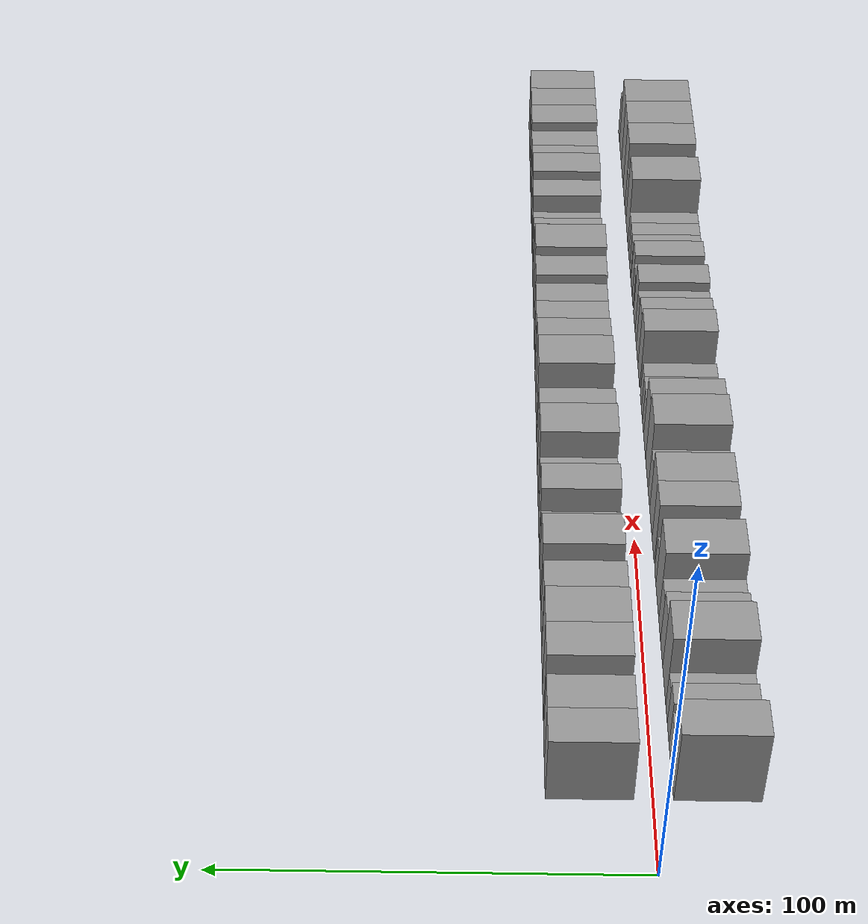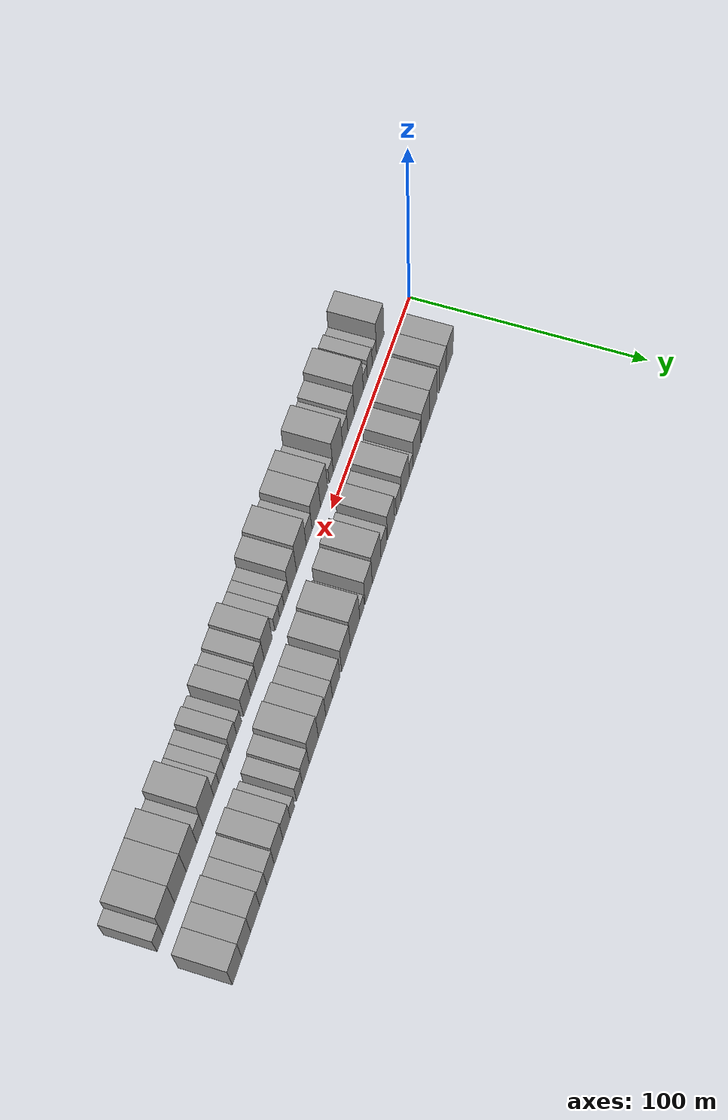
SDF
<sdf version="1.6">
 <world name="default">
  <scene>
   <sky><clouds><speed>12</speed></clouds></sky>
   <ambient>0.4 0.4 0.4 1</ambient>
   <background>0.7 0.7 0.7 1</background>
   <shadows>1</shadows>
  </scene>
  <gravity>0 0 -9.8066</gravity>
  <magnetic_field>6e-06 2.3e-05 -4.2e-05</magnetic_field>
  <physics default="0" name="default_physics" type="ode">
   <ode>
    <solver>
     <type>quick</type>
     <iters>10</iters>
     <sor>1.0</sor>
     <use_dynamic_moi_rescaling>0</use_dynamic_moi_rescaling>
    </solver>
    <constraints>
     <cfm>0</cfm>
     <erp>0.2</erp>
     <contact_max_correcting_vel>100</contact_max_correcting_vel>
     <contact_surface_layer>0.001</contact_surface_layer>
    </constraints>
   </ode>
   <max_step_size>0.004</max_step_size>
   <real_time_factor>1</real_time_factor>
   <real_time_update_rate>250</real_time_update_rate>
  </physics>
  <light name="sun" type="directional">
   <pose>0 0 10 0 0 0</pose>
   <diffuse>0.8 0.8 0.8 1</diffuse>
   <specular>0.2 0.2 0.2 1</specular>
   <attenuation>
    <range>1000</range>
    <constant>0.9</constant>
    <linear>0.01</linear>
    <quadratic>0.001</quadratic>
   </attenuation>
   <direction>-0.5 0.1 -0.9</direction>
  </light>
  <model name="building_1">
   <static>1</static>
   <pose>24.7421 14.5000 0 0.000000 0.000000 1.570796</pose>
   <link name="link">
    <pose>0 0 10.50 0 0 0</pose>
    <collision name="collision"><geometry><box><size>20.0000 9.4841 21.0000</size></box></geometry></collision>
    <visual name="visual">
     <cast_shadows>0</cast_shadows>
     <geometry><box><size>20.0000 9.4841 21.0000</size></box></geometry>
     <material>
      <script>
       <uri>model://grey_wall/materials/scripts</uri>
       <uri>model://grey_wall/materials/textures</uri>
       <name>vrc/grey_wall</name>
      </script>
     </material>
    </visual>
   </link>
  </model>
  <model name="building_2">
   <static>1</static>
   <pose>34.2216 14.5000 0 0.000000 0.000000 1.570796</pose>
   <link name="link">
    <pose>0 0 10.50 0 0 0</pose>
    <collision name="collision"><geometry><box><size>20.0000 9.4750 21.0000</size></box></geometry></collision>
    <visual name="visual">
     <cast_shadows>0</cast_shadows>
     <geometry><box><size>20.0000 9.4750 21.0000</size></box></geometry>
     <material>
      <script>
       <uri>model://grey_wall/materials/scripts</uri>
       <uri>model://grey_wall/materials/textures</uri>
       <name>vrc/grey_wall</name>
      </script>
     </material>
    </visual>
   </link>
  </model>
  <model name="building_3">
   <static>1</static>
   <pose>46.9594 14.5000 0 0.000000 0.000000 1.570796</pose>
   <link name="link">
    <pose>0 0 12.00 0 0 0</pose>
    <collision name="collision"><geometry><box><size>20.0000 10.0005 24.0000</size></box></geometry></collision>
    <visual name="visual">
     <cast_shadows>0</cast_shadows>
     <geometry><box><size>20.0000 10.0005 24.0000</size></box></geometry>
     <material>
      <script>
       <uri>model://grey_wall/materials/scripts</uri>
       <uri>model://grey_wall/materials/textures</uri>
       <name>vrc/grey_wall</name>
      </script>
     </material>
    </visual>
   </link>
  </model>
  <model name="building_4">
   <static>1</static>
   <pose>57.3782 14.5000 0 0.000000 0.000000 1.570796</pose>
   <link name="link">
    <pose>0 0 12.00 0 0 0</pose>
    <collision name="collision"><geometry><box><size>20.0000 10.8371 24.0000</size></box></geometry></collision>
    <visual name="visual">
     <cast_shadows>0</cast_shadows>
     <geometry><box><size>20.0000 10.8371 24.0000</size></box></geometry>
     <material>
      <script>
       <uri>model://grey_wall/materials/scripts</uri>
       <uri>model://grey_wall/materials/textures</uri>
       <name>vrc/grey_wall</name>
      </script>
     </material>
    </visual>
   </link>
  </model>
  <model name="building_5">
   <static>1</static>
   <pose>68.7618 14.5000 0 0.000000 0.000000 1.570796</pose>
   <link name="link">
    <pose>0 0 10.50 0 0 0</pose>
    <collision name="collision"><geometry><box><size>20.0000 9.9301 21.0000</size></box></geometry></collision>
    <visual name="visual">
     <cast_shadows>0</cast_shadows>
     <geometry><box><size>20.0000 9.9301 21.0000</size></box></geometry>
     <material>
      <script>
       <uri>model://grey_wall/materials/scripts</uri>
       <uri>model://grey_wall/materials/textures</uri>
       <name>vrc/grey_wall</name>
      </script>
     </material>
    </visual>
   </link>
  </model>
  <model name="building_6">
   <static>1</static>
   <pose>76.4064 14.5000 0 0.000000 0.000000 1.570796</pose>
   <link name="link">
    <pose>0 0 6.00 0 0 0</pose>
    <collision name="collision"><geometry><box><size>20.0000 5.3589 12.0000</size></box></geometry></collision>
    <visual name="visual">
     <cast_shadows>0</cast_shadows>
     <geometry><box><size>20.0000 5.3589 12.0000</size></box></geometry>
     <material>
      <script>
       <uri>model://grey_wall/materials/scripts</uri>
       <uri>model://grey_wall/materials/textures</uri>
       <name>vrc/grey_wall</name>
      </script>
     </material>
    </visual>
   </link>
  </model>
  <model name="building_7">
   <static>1</static>
   <pose>84.1579 14.5000 0 0.000000 0.000000 1.570796</pose>
   <link name="link">
    <pose>0 0 10.50 0 0 0</pose>
    <collision name="collision"><geometry><box><size>20.0000 10.1442 21.0000</size></box></geometry></collision>
    <visual name="visual">
     <cast_shadows>0</cast_shadows>
     <geometry><box><size>20.0000 10.1442 21.0000</size></box></geometry>
     <material>
      <script>
       <uri>model://grey_wall/materials/scripts</uri>
       <uri>model://grey_wall/materials/textures</uri>
       <name>vrc/grey_wall</name>
      </script>
     </material>
    </visual>
   </link>
  </model>
  <model name="building_8">
   <static>1</static>
   <pose>92.4167 14.5000 0 0.000000 0.000000 1.570796</pose>
   <link name="link">
    <pose>0 0 7.50 0 0 0</pose>
    <collision name="collision"><geometry><box><size>20.0000 6.3733 15.0000</size></box></geometry></collision>
    <visual name="visual">
     <cast_shadows>0</cast_shadows>
     <geometry><box><size>20.0000 6.3733 15.0000</size></box></geometry>
     <material>
      <script>
       <uri>model://grey_wall/materials/scripts</uri>
       <uri>model://grey_wall/materials/textures</uri>
       <name>vrc/grey_wall</name>
      </script>
     </material>
    </visual>
   </link>
  </model>
  <model name="building_9">
   <static>1</static>
   <pose>102.1163 14.5000 0 0.000000 0.000000 1.570796</pose>
   <link name="link">
    <pose>0 0 10.50 0 0 0</pose>
    <collision name="collision"><geometry><box><size>20.0000 9.0258 21.0000</size></box></geometry></collision>
    <visual name="visual">
     <cast_shadows>0</cast_shadows>
     <geometry><box><size>20.0000 9.0258 21.0000</size></box></geometry>
     <material>
      <script>
       <uri>model://grey_wall/materials/scripts</uri>
       <uri>model://grey_wall/materials/textures</uri>
       <name>vrc/grey_wall</name>
      </script>
     </material>
    </visual>
   </link>
  </model>
  <model name="building_10">
   <static>1</static>
   <pose>111.2244 14.5000 0 0.000000 0.000000 1.570796</pose>
   <link name="link">
    <pose>0 0 7.50 0 0 0</pose>
    <collision name="collision"><geometry><box><size>20.0000 7.1904 15.0000</size></box></geometry></collision>
    <visual name="visual">
     <cast_shadows>0</cast_shadows>
     <geometry><box><size>20.0000 7.1904 15.0000</size></box></geometry>
     <material>
      <script>
       <uri>model://grey_wall/materials/scripts</uri>
       <uri>model://grey_wall/materials/textures</uri>
       <name>vrc/grey_wall</name>
      </script>
     </material>
    </visual>
   </link>
  </model>
  <model name="building_11">
   <static>1</static>
   <pose>120.2477 14.5000 0 0.000000 0.000000 1.570796</pose>
   <link name="link">
    <pose>0 0 12.00 0 0 0</pose>
    <collision name="collision"><geometry><box><size>20.0000 10.8564 24.0000</size></box></geometry></collision>
    <visual name="visual">
     <cast_shadows>0</cast_shadows>
     <geometry><box><size>20.0000 10.8564 24.0000</size></box></geometry>
     <material>
      <script>
       <uri>model://grey_wall/materials/scripts</uri>
       <uri>model://grey_wall/materials/textures</uri>
       <name>vrc/grey_wall</name>
      </script>
     </material>
    </visual>
   </link>
  </model>
  <model name="building_12">
   <static>1</static>
   <pose>130.1822 14.5000 0 0.000000 0.000000 1.570796</pose>
   <link name="link">
    <pose>0 0 10.50 0 0 0</pose>
    <collision name="collision"><geometry><box><size>20.0000 9.0125 21.0000</size></box></geometry></collision>
    <visual name="visual">
     <cast_shadows>0</cast_shadows>
     <geometry><box><size>20.0000 9.0125 21.0000</size></box></geometry>
     <material>
      <script>
       <uri>model://grey_wall/materials/scripts</uri>
       <uri>model://grey_wall/materials/textures</uri>
       <name>vrc/grey_wall</name>
      </script>
     </material>
    </visual>
   </link>
  </model>
  <model name="building_13">
   <static>1</static>
   <pose>138.3503 14.5000 0 0.000000 0.000000 1.570796</pose>
   <link name="link">
    <pose>0 0 6.00 0 0 0</pose>
    <collision name="collision"><geometry><box><size>20.0000 5.3237 12.0000</size></box></geometry></collision>
    <visual name="visual">
     <cast_shadows>0</cast_shadows>
     <geometry><box><size>20.0000 5.3237 12.0000</size></box></geometry>
     <material>
      <script>
       <uri>model://grey_wall/materials/scripts</uri>
       <uri>model://grey_wall/materials/textures</uri>
       <name>vrc/grey_wall</name>
      </script>
     </material>
    </visual>
   </link>
  </model>
  <model name="building_14">
   <static>1</static>
   <pose>146.7217 14.5000 0 0.000000 0.000000 1.570796</pose>
   <link name="link">
    <pose>0 0 12.00 0 0 0</pose>
    <collision name="collision"><geometry><box><size>20.0000 11.4192 24.0000</size></box></geometry></collision>
    <visual name="visual">
     <cast_shadows>0</cast_shadows>
     <geometry><box><size>20.0000 11.4192 24.0000</size></box></geometry>
     <material>
      <script>
       <uri>model://grey_wall/materials/scripts</uri>
       <uri>model://grey_wall/materials/textures</uri>
       <name>vrc/grey_wall</name>
      </script>
     </material>
    </visual>
   </link>
  </model>
  <model name="building_15">
   <static>1</static>
   <pose>157.6557 14.5000 0 0.000000 0.000000 1.570796</pose>
   <link name="link">
    <pose>0 0 10.50 0 0 0</pose>
    <collision name="collision"><geometry><box><size>20.0000 10.4486 21.0000</size></box></geometry></collision>
    <visual name="visual">
     <cast_shadows>0</cast_shadows>
     <geometry><box><size>20.0000 10.4486 21.0000</size></box></geometry>
     <material>
      <script>
       <uri>model://grey_wall/materials/scripts</uri>
       <uri>model://grey_wall/materials/textures</uri>
       <name>vrc/grey_wall</name>
      </script>
     </material>
    </visual>
   </link>
  </model>
  <model name="building_16">
   <static>1</static>
   <pose>169.2767 14.5000 0 0.000000 0.000000 1.570796</pose>
   <link name="link">
    <pose>0 0 9.00 0 0 0</pose>
    <collision name="collision"><geometry><box><size>20.0000 8.7935 18.0000</size></box></geometry></collision>
    <visual name="visual">
     <cast_shadows>0</cast_shadows>
     <geometry><box><size>20.0000 8.7935 18.0000</size></box></geometry>
     <material>
      <script>
       <uri>model://grey_wall/materials/scripts</uri>
       <uri>model://grey_wall/materials/textures</uri>
       <name>vrc/grey_wall</name>
      </script>
     </material>
    </visual>
   </link>
  </model>
  <model name="building_17">
   <static>1</static>
   <pose>177.5255 14.5000 0 0.000000 0.000000 1.570796</pose>
   <link name="link">
    <pose>0 0 9.00 0 0 0</pose>
    <collision name="collision"><geometry><box><size>20.0000 7.7040 18.0000</size></box></geometry></collision>
    <visual name="visual">
     <cast_shadows>0</cast_shadows>
     <geometry><box><size>20.0000 7.7040 18.0000</size></box></geometry>
     <material>
      <script>
       <uri>model://grey_wall/materials/scripts</uri>
       <uri>model://grey_wall/materials/textures</uri>
       <name>vrc/grey_wall</name>
      </script>
     </material>
    </visual>
   </link>
  </model>
  <model name="building_18">
   <static>1</static>
   <pose>185.7374 14.5000 0 0.000000 0.000000 1.570796</pose>
   <link name="link">
    <pose>0 0 10.50 0 0 0</pose>
    <collision name="collision"><geometry><box><size>20.0000 8.7199 21.0000</size></box></geometry></collision>
    <visual name="visual">
     <cast_shadows>0</cast_shadows>
     <geometry><box><size>20.0000 8.7199 21.0000</size></box></geometry>
     <material>
      <script>
       <uri>model://grey_wall/materials/scripts</uri>
       <uri>model://grey_wall/materials/textures</uri>
       <name>vrc/grey_wall</name>
      </script>
     </material>
    </visual>
   </link>
  </model>
  <model name="building_19">
   <static>1</static>
   <pose>195.3973 14.5000 0 0.000000 0.000000 1.570796</pose>
   <link name="link">
    <pose>0 0 12.00 0 0 0</pose>
    <collision name="collision"><geometry><box><size>20.0000 10.5998 24.0000</size></box></geometry></collision>
    <visual name="visual">
     <cast_shadows>0</cast_shadows>
     <geometry><box><size>20.0000 10.5998 24.0000</size></box></geometry>
     <material>
      <script>
       <uri>model://grey_wall/materials/scripts</uri>
       <uri>model://grey_wall/materials/textures</uri>
       <name>vrc/grey_wall</name>
      </script>
     </material>
    </visual>
   </link>
  </model>
  <model name="building_20">
   <static>1</static>
   <pose>204.5930 14.5000 0 0.000000 0.000000 1.570796</pose>
   <link name="link">
    <pose>0 0 9.00 0 0 0</pose>
    <collision name="collision"><geometry><box><size>20.0000 7.7916 18.0000</size></box></geometry></collision>
    <visual name="visual">
     <cast_shadows>0</cast_shadows>
     <geometry><box><size>20.0000 7.7916 18.0000</size></box></geometry>
     <material>
      <script>
       <uri>model://grey_wall/materials/scripts</uri>
       <uri>model://grey_wall/materials/textures</uri>
       <name>vrc/grey_wall</name>
      </script>
     </material>
    </visual>
   </link>
  </model>
  <model name="building_21">
   <static>1</static>
   <pose>211.8534 14.5000 0 0.000000 0.000000 1.570796</pose>
   <link name="link">
    <pose>0 0 7.50 0 0 0</pose>
    <collision name="collision"><geometry><box><size>20.0000 6.7293 15.0000</size></box></geometry></collision>
    <visual name="visual">
     <cast_shadows>0</cast_shadows>
     <geometry><box><size>20.0000 6.7293 15.0000</size></box></geometry>
     <material>
      <script>
       <uri>model://grey_wall/materials/scripts</uri>
       <uri>model://grey_wall/materials/textures</uri>
       <name>vrc/grey_wall</name>
      </script>
     </material>
    </visual>
   </link>
  </model>
  <model name="building_22">
   <static>1</static>
   <pose>219.6407 14.5000 0 0.000000 0.000000 1.570796</pose>
   <link name="link">
    <pose>0 0 6.00 0 0 0</pose>
    <collision name="collision"><geometry><box><size>20.0000 4.8453 12.0000</size></box></geometry></collision>
    <visual name="visual">
     <cast_shadows>0</cast_shadows>
     <geometry><box><size>20.0000 4.8453 12.0000</size></box></geometry>
     <material>
      <script>
       <uri>model://grey_wall/materials/scripts</uri>
       <uri>model://grey_wall/materials/textures</uri>
       <name>vrc/grey_wall</name>
      </script>
     </material>
    </visual>
   </link>
  </model>
  <model name="building_23">
   <static>1</static>
   <pose>226.0874 14.5000 0 0.000000 0.000000 1.570796</pose>
   <link name="link">
    <pose>0 0 9.00 0 0 0</pose>
    <collision name="collision"><geometry><box><size>20.0000 8.0481 18.0000</size></box></geometry></collision>
    <visual name="visual">
     <cast_shadows>0</cast_shadows>
     <geometry><box><size>20.0000 8.0481 18.0000</size></box></geometry>
     <material>
      <script>
       <uri>model://grey_wall/materials/scripts</uri>
       <uri>model://grey_wall/materials/textures</uri>
       <name>vrc/grey_wall</name>
      </script>
     </material>
    </visual>
   </link>
  </model>
  <model name="building_24">
   <static>1</static>
   <pose>234.8667 14.5000 0 0.000000 0.000000 1.570796</pose>
   <link name="link">
    <pose>0 0 10.50 0 0 0</pose>
    <collision name="collision"><geometry><box><size>20.0000 9.5105 21.0000</size></box></geometry></collision>
    <visual name="visual">
     <cast_shadows>0</cast_shadows>
     <geometry><box><size>20.0000 9.5105 21.0000</size></box></geometry>
     <material>
      <script>
       <uri>model://grey_wall/materials/scripts</uri>
       <uri>model://grey_wall/materials/textures</uri>
       <name>vrc/grey_wall</name>
      </script>
     </material>
    </visual>
   </link>
  </model>
  <model name="building_25">
   <static>1</static>
   <pose>243.6418 14.5000 0 0.000000 0.000000 1.570796</pose>
   <link name="link">
    <pose>0 0 9.00 0 0 0</pose>
    <collision name="collision"><geometry><box><size>20.0000 8.0398 18.0000</size></box></geometry></collision>
    <visual name="visual">
     <cast_shadows>0</cast_shadows>
     <geometry><box><size>20.0000 8.0398 18.0000</size></box></geometry>
     <material>
      <script>
       <uri>model://grey_wall/materials/scripts</uri>
       <uri>model://grey_wall/materials/textures</uri>
       <name>vrc/grey_wall</name>
      </script>
     </material>
    </visual>
   </link>
  </model>
  <model name="building_26">
   <static>1</static>
   <pose>251.5086 14.5000 0 0.000000 0.000000 1.570796</pose>
   <link name="link">
    <pose>0 0 9.00 0 0 0</pose>
    <collision name="collision"><geometry><box><size>20.0000 7.6938 18.0000</size></box></geometry></collision>
    <visual name="visual">
     <cast_shadows>0</cast_shadows>
     <geometry><box><size>20.0000 7.6938 18.0000</size></box></geometry>
     <material>
      <script>
       <uri>model://grey_wall/materials/scripts</uri>
       <uri>model://grey_wall/materials/textures</uri>
       <name>vrc/grey_wall</name>
      </script>
     </material>
    </visual>
   </link>
  </model>
  <model name="building_27">
   <static>1</static>
   <pose>260.1843 14.5000 0 0.000000 0.000000 1.570796</pose>
   <link name="link">
    <pose>0 0 10.50 0 0 0</pose>
    <collision name="collision"><geometry><box><size>20.0000 9.6576 21.0000</size></box></geometry></collision>
    <visual name="visual">
     <cast_shadows>0</cast_shadows>
     <geometry><box><size>20.0000 9.6576 21.0000</size></box></geometry>
     <material>
      <script>
       <uri>model://grey_wall/materials/scripts</uri>
       <uri>model://grey_wall/materials/textures</uri>
       <name>vrc/grey_wall</name>
      </script>
     </material>
    </visual>
   </link>
  </model>
  <model name="building_28">
   <static>1</static>
   <pose>269.6233 14.5000 0 0.000000 0.000000 1.570796</pose>
   <link name="link">
    <pose>0 0 10.50 0 0 0</pose>
    <collision name="collision"><geometry><box><size>20.0000 9.2205 21.0000</size></box></geometry></collision>
    <visual name="visual">
     <cast_shadows>0</cast_shadows>
     <geometry><box><size>20.0000 9.2205 21.0000</size></box></geometry>
     <material>
      <script>
       <uri>model://grey_wall/materials/scripts</uri>
       <uri>model://grey_wall/materials/textures</uri>
       <name>vrc/grey_wall</name>
      </script>
     </material>
    </visual>
   </link>
  </model>
  <model name="building_29">
   <static>1</static>
   <pose>279.1970 14.5000 0 0.000000 0.000000 1.570796</pose>
   <link name="link">
    <pose>0 0 10.50 0 0 0</pose>
    <collision name="collision"><geometry><box><size>20.0000 9.9270 21.0000</size></box></geometry></collision>
    <visual name="visual">
     <cast_shadows>0</cast_shadows>
     <geometry><box><size>20.0000 9.9270 21.0000</size></box></geometry>
     <material>
      <script>
       <uri>model://grey_wall/materials/scripts</uri>
       <uri>model://grey_wall/materials/textures</uri>
       <name>vrc/grey_wall</name>
      </script>
     </material>
    </visual>
   </link>
  </model>
  <model name="building_30">
   <static>1</static>
   <pose>24.9432 -14.5000 0 0.000000 0.000000 1.570796</pose>
   <link name="link">
    <pose>0 0 12.00 0 0 0</pose>
    <collision name="collision"><geometry><box><size>20.0000 9.8864 24.0000</size></box></geometry></collision>
    <visual name="visual">
     <cast_shadows>0</cast_shadows>
     <geometry><box><size>20.0000 9.8864 24.0000</size></box></geometry>
     <material>
      <script>
       <uri>model://grey_wall/materials/scripts</uri>
       <uri>model://grey_wall/materials/textures</uri>
       <name>vrc/grey_wall</name>
      </script>
     </material>
    </visual>
   </link>
  </model>
  <model name="building_31">
   <static>1</static>
   <pose>32.6697 -14.5000 0 0.000000 0.000000 1.570796</pose>
   <link name="link">
    <pose>0 0 6.00 0 0 0</pose>
    <collision name="collision"><geometry><box><size>20.0000 5.5666 12.0000</size></box></geometry></collision>
    <visual name="visual">
     <cast_shadows>0</cast_shadows>
     <geometry><box><size>20.0000 5.5666 12.0000</size></box></geometry>
     <material>
      <script>
       <uri>model://grey_wall/materials/scripts</uri>
       <uri>model://grey_wall/materials/textures</uri>
       <name>vrc/grey_wall</name>
      </script>
     </material>
    </visual>
   </link>
  </model>
  <model name="building_32">
   <static>1</static>
   <pose>38.5680 -14.5000 0 0.000000 0.000000 1.570796</pose>
   <link name="link">
    <pose>0 0 7.50 0 0 0</pose>
    <collision name="collision"><geometry><box><size>20.0000 6.2299 15.0000</size></box></geometry></collision>
    <visual name="visual">
     <cast_shadows>0</cast_shadows>
     <geometry><box><size>20.0000 6.2299 15.0000</size></box></geometry>
     <material>
      <script>
       <uri>model://grey_wall/materials/scripts</uri>
       <uri>model://grey_wall/materials/textures</uri>
       <name>vrc/grey_wall</name>
      </script>
     </material>
    </visual>
   </link>
  </model>
  <model name="building_33">
   <static>1</static>
   <pose>44.3919 -14.5000 0 0.000000 0.000000 1.570796</pose>
   <link name="link">
    <pose>0 0 6.00 0 0 0</pose>
    <collision name="collision"><geometry><box><size>20.0000 5.4180 12.0000</size></box></geometry></collision>
    <visual name="visual">
     <cast_shadows>0</cast_shadows>
     <geometry><box><size>20.0000 5.4180 12.0000</size></box></geometry>
     <material>
      <script>
       <uri>model://grey_wall/materials/scripts</uri>
       <uri>model://grey_wall/materials/textures</uri>
       <name>vrc/grey_wall</name>
      </script>
     </material>
    </visual>
   </link>
  </model>
  <model name="building_34">
   <static>1</static>
   <pose>52.8884 -14.5000 0 0.000000 0.000000 1.570796</pose>
   <link name="link">
    <pose>0 0 12.00 0 0 0</pose>
    <collision name="collision"><geometry><box><size>20.0000 11.5749 24.0000</size></box></geometry></collision>
    <visual name="visual">
     <cast_shadows>0</cast_shadows>
     <geometry><box><size>20.0000 11.5749 24.0000</size></box></geometry>
     <material>
      <script>
       <uri>model://grey_wall/materials/scripts</uri>
       <uri>model://grey_wall/materials/textures</uri>
       <name>vrc/grey_wall</name>
      </script>
     </material>
    </visual>
   </link>
  </model>
  <model name="building_35">
   <static>1</static>
   <pose>62.7003 -14.5000 0 0.000000 0.000000 1.570796</pose>
   <link name="link">
    <pose>0 0 9.00 0 0 0</pose>
    <collision name="collision"><geometry><box><size>20.0000 8.0488 18.0000</size></box></geometry></collision>
    <visual name="visual">
     <cast_shadows>0</cast_shadows>
     <geometry><box><size>20.0000 8.0488 18.0000</size></box></geometry>
     <material>
      <script>
       <uri>model://grey_wall/materials/scripts</uri>
       <uri>model://grey_wall/materials/textures</uri>
       <name>vrc/grey_wall</name>
      </script>
     </material>
    </visual>
   </link>
  </model>
  <model name="building_36">
   <static>1</static>
   <pose>70.1282 -14.5000 0 0.000000 0.000000 1.570796</pose>
   <link name="link">
    <pose>0 0 7.50 0 0 0</pose>
    <collision name="collision"><geometry><box><size>20.0000 6.8071 15.0000</size></box></geometry></collision>
    <visual name="visual">
     <cast_shadows>0</cast_shadows>
     <geometry><box><size>20.0000 6.8071 15.0000</size></box></geometry>
     <material>
      <script>
       <uri>model://grey_wall/materials/scripts</uri>
       <uri>model://grey_wall/materials/textures</uri>
       <name>vrc/grey_wall</name>
      </script>
     </material>
    </visual>
   </link>
  </model>
  <model name="building_37">
   <static>1</static>
   <pose>79.3209 -14.5000 0 0.000000 0.000000 1.570796</pose>
   <link name="link">
    <pose>0 0 12.00 0 0 0</pose>
    <collision name="collision"><geometry><box><size>20.0000 11.5782 24.0000</size></box></geometry></collision>
    <visual name="visual">
     <cast_shadows>0</cast_shadows>
     <geometry><box><size>20.0000 11.5782 24.0000</size></box></geometry>
     <material>
      <script>
       <uri>model://grey_wall/materials/scripts</uri>
       <uri>model://grey_wall/materials/textures</uri>
       <name>vrc/grey_wall</name>
      </script>
     </material>
    </visual>
   </link>
  </model>
  <model name="building_38">
   <static>1</static>
   <pose>87.6372 -14.5000 0 0.000000 0.000000 1.570796</pose>
   <link name="link">
    <pose>0 0 6.00 0 0 0</pose>
    <collision name="collision"><geometry><box><size>20.0000 5.0543 12.0000</size></box></geometry></collision>
    <visual name="visual">
     <cast_shadows>0</cast_shadows>
     <geometry><box><size>20.0000 5.0543 12.0000</size></box></geometry>
     <material>
      <script>
       <uri>model://grey_wall/materials/scripts</uri>
       <uri>model://grey_wall/materials/textures</uri>
       <name>vrc/grey_wall</name>
      </script>
     </material>
    </visual>
   </link>
  </model>
  <model name="building_39">
   <static>1</static>
   <pose>96.4979 -14.5000 0 0.000000 0.000000 1.570796</pose>
   <link name="link">
    <pose>0 0 10.50 0 0 0</pose>
    <collision name="collision"><geometry><box><size>20.0000 8.6671 21.0000</size></box></geometry></collision>
    <visual name="visual">
     <cast_shadows>0</cast_shadows>
     <geometry><box><size>20.0000 8.6671 21.0000</size></box></geometry>
     <material>
      <script>
       <uri>model://grey_wall/materials/scripts</uri>
       <uri>model://grey_wall/materials/textures</uri>
       <name>vrc/grey_wall</name>
      </script>
     </material>
    </visual>
   </link>
  </model>
  <model name="building_40">
   <static>1</static>
   <pose>105.9339 -14.5000 0 0.000000 0.000000 1.570796</pose>
   <link name="link">
    <pose>0 0 10.50 0 0 0</pose>
    <collision name="collision"><geometry><box><size>20.0000 10.2050 21.0000</size></box></geometry></collision>
    <visual name="visual">
     <cast_shadows>0</cast_shadows>
     <geometry><box><size>20.0000 10.2050 21.0000</size></box></geometry>
     <material>
      <script>
       <uri>model://grey_wall/materials/scripts</uri>
       <uri>model://grey_wall/materials/textures</uri>
       <name>vrc/grey_wall</name>
      </script>
     </material>
    </visual>
   </link>
  </model>
  <model name="building_41">
   <static>1</static>
   <pose>114.5118 -14.5000 0 0.000000 0.000000 1.570796</pose>
   <link name="link">
    <pose>0 0 7.50 0 0 0</pose>
    <collision name="collision"><geometry><box><size>20.0000 6.9506 15.0000</size></box></geometry></collision>
    <visual name="visual">
     <cast_shadows>0</cast_shadows>
     <geometry><box><size>20.0000 6.9506 15.0000</size></box></geometry>
     <material>
      <script>
       <uri>model://grey_wall/materials/scripts</uri>
       <uri>model://grey_wall/materials/textures</uri>
       <name>vrc/grey_wall</name>
      </script>
     </material>
    </visual>
   </link>
  </model>
  <model name="building_42">
   <static>1</static>
   <pose>123.7970 -14.5000 0 0.000000 0.000000 1.570796</pose>
   <link name="link">
    <pose>0 0 12.00 0 0 0</pose>
    <collision name="collision"><geometry><box><size>20.0000 11.6200 24.0000</size></box></geometry></collision>
    <visual name="visual">
     <cast_shadows>0</cast_shadows>
     <geometry><box><size>20.0000 11.6200 24.0000</size></box></geometry>
     <material>
      <script>
       <uri>model://grey_wall/materials/scripts</uri>
       <uri>model://grey_wall/materials/textures</uri>
       <name>vrc/grey_wall</name>
      </script>
     </material>
    </visual>
   </link>
  </model>
  <model name="building_43">
   <static>1</static>
   <pose>134.2510 -14.5000 0 0.000000 0.000000 1.570796</pose>
   <link name="link">
    <pose>0 0 10.50 0 0 0</pose>
    <collision name="collision"><geometry><box><size>20.0000 9.2879 21.0000</size></box></geometry></collision>
    <visual name="visual">
     <cast_shadows>0</cast_shadows>
     <geometry><box><size>20.0000 9.2879 21.0000</size></box></geometry>
     <material>
      <script>
       <uri>model://grey_wall/materials/scripts</uri>
       <uri>model://grey_wall/materials/textures</uri>
       <name>vrc/grey_wall</name>
      </script>
     </material>
    </visual>
   </link>
  </model>
  <model name="building_44">
   <static>1</static>
   <pose>141.6520 -14.5000 0 0.000000 0.000000 1.570796</pose>
   <link name="link">
    <pose>0 0 6.00 0 0 0</pose>
    <collision name="collision"><geometry><box><size>20.0000 5.5142 12.0000</size></box></geometry></collision>
    <visual name="visual">
     <cast_shadows>0</cast_shadows>
     <geometry><box><size>20.0000 5.5142 12.0000</size></box></geometry>
     <material>
      <script>
       <uri>model://grey_wall/materials/scripts</uri>
       <uri>model://grey_wall/materials/textures</uri>
       <name>vrc/grey_wall</name>
      </script>
     </material>
    </visual>
   </link>
  </model>
  <model name="building_45">
   <static>1</static>
   <pose>146.8978 -14.5000 0 0.000000 0.000000 1.570796</pose>
   <link name="link">
    <pose>0 0 6.00 0 0 0</pose>
    <collision name="collision"><geometry><box><size>20.0000 4.9773 12.0000</size></box></geometry></collision>
    <visual name="visual">
     <cast_shadows>0</cast_shadows>
     <geometry><box><size>20.0000 4.9773 12.0000</size></box></geometry>
     <material>
      <script>
       <uri>model://grey_wall/materials/scripts</uri>
       <uri>model://grey_wall/materials/textures</uri>
       <name>vrc/grey_wall</name>
      </script>
     </material>
    </visual>
   </link>
  </model>
  <model name="building_46">
   <static>1</static>
   <pose>152.1326 -14.5000 0 0.000000 0.000000 1.570796</pose>
   <link name="link">
    <pose>0 0 6.00 0 0 0</pose>
    <collision name="collision"><geometry><box><size>20.0000 5.4925 12.0000</size></box></geometry></collision>
    <visual name="visual">
     <cast_shadows>0</cast_shadows>
     <geometry><box><size>20.0000 5.4925 12.0000</size></box></geometry>
     <material>
      <script>
       <uri>model://grey_wall/materials/scripts</uri>
       <uri>model://grey_wall/materials/textures</uri>
       <name>vrc/grey_wall</name>
      </script>
     </material>
    </visual>
   </link>
  </model>
  <model name="building_47">
   <static>1</static>
   <pose>162.4868 -14.5000 0 0.000000 0.000000 1.570796</pose>
   <link name="link">
    <pose>0 0 10.50 0 0 0</pose>
    <collision name="collision"><geometry><box><size>20.0000 9.2159 21.0000</size></box></geometry></collision>
    <visual name="visual">
     <cast_shadows>0</cast_shadows>
     <geometry><box><size>20.0000 9.2159 21.0000</size></box></geometry>
     <material>
      <script>
       <uri>model://grey_wall/materials/scripts</uri>
       <uri>model://grey_wall/materials/textures</uri>
       <name>vrc/grey_wall</name>
      </script>
     </material>
    </visual>
   </link>
  </model>
  <model name="building_48">
   <static>1</static>
   <pose>171.3334 -14.5000 0 0.000000 0.000000 1.570796</pose>
   <link name="link">
    <pose>0 0 9.00 0 0 0</pose>
    <collision name="collision"><geometry><box><size>20.0000 8.4772 18.0000</size></box></geometry></collision>
    <visual name="visual">
     <cast_shadows>0</cast_shadows>
     <geometry><box><size>20.0000 8.4772 18.0000</size></box></geometry>
     <material>
      <script>
       <uri>model://grey_wall/materials/scripts</uri>
       <uri>model://grey_wall/materials/textures</uri>
       <name>vrc/grey_wall</name>
      </script>
     </material>
    </visual>
   </link>
  </model>
  <model name="building_49">
   <static>1</static>
   <pose>178.8638 -14.5000 0 0.000000 0.000000 1.570796</pose>
   <link name="link">
    <pose>0 0 7.50 0 0 0</pose>
    <collision name="collision"><geometry><box><size>20.0000 6.5837 15.0000</size></box></geometry></collision>
    <visual name="visual">
     <cast_shadows>0</cast_shadows>
     <geometry><box><size>20.0000 6.5837 15.0000</size></box></geometry>
     <material>
      <script>
       <uri>model://grey_wall/materials/scripts</uri>
       <uri>model://grey_wall/materials/textures</uri>
       <name>vrc/grey_wall</name>
      </script>
     </material>
    </visual>
   </link>
  </model>
  <model name="building_50">
   <static>1</static>
   <pose>186.2467 -14.5000 0 0.000000 0.000000 1.570796</pose>
   <link name="link">
    <pose>0 0 9.00 0 0 0</pose>
    <collision name="collision"><geometry><box><size>20.0000 8.1821 18.0000</size></box></geometry></collision>
    <visual name="visual">
     <cast_shadows>0</cast_shadows>
     <geometry><box><size>20.0000 8.1821 18.0000</size></box></geometry>
     <material>
      <script>
       <uri>model://grey_wall/materials/scripts</uri>
       <uri>model://grey_wall/materials/textures</uri>
       <name>vrc/grey_wall</name>
      </script>
     </material>
    </visual>
   </link>
  </model>
  <model name="building_51">
   <static>1</static>
   <pose>195.0648 -14.5000 0 0.000000 0.000000 1.570796</pose>
   <link name="link">
    <pose>0 0 6.00 0 0 0</pose>
    <collision name="collision"><geometry><box><size>20.0000 5.4539 12.0000</size></box></geometry></collision>
    <visual name="visual">
     <cast_shadows>0</cast_shadows>
     <geometry><box><size>20.0000 5.4539 12.0000</size></box></geometry>
     <material>
      <script>
       <uri>model://grey_wall/materials/scripts</uri>
       <uri>model://grey_wall/materials/textures</uri>
       <name>vrc/grey_wall</name>
      </script>
     </material>
    </visual>
   </link>
  </model>
  <model name="building_52">
   <static>1</static>
   <pose>201.3496 -14.5000 0 0.000000 0.000000 1.570796</pose>
   <link name="link">
    <pose>0 0 7.50 0 0 0</pose>
    <collision name="collision"><geometry><box><size>20.0000 7.1158 15.0000</size></box></geometry></collision>
    <visual name="visual">
     <cast_shadows>0</cast_shadows>
     <geometry><box><size>20.0000 7.1158 15.0000</size></box></geometry>
     <material>
      <script>
       <uri>model://grey_wall/materials/scripts</uri>
       <uri>model://grey_wall/materials/textures</uri>
       <name>vrc/grey_wall</name>
      </script>
     </material>
    </visual>
   </link>
  </model>
  <model name="building_53">
   <static>1</static>
   <pose>208.7354 -14.5000 0 0.000000 0.000000 1.570796</pose>
   <link name="link">
    <pose>0 0 6.00 0 0 0</pose>
    <collision name="collision"><geometry><box><size>20.0000 5.6559 12.0000</size></box></geometry></collision>
    <visual name="visual">
     <cast_shadows>0</cast_shadows>
     <geometry><box><size>20.0000 5.6559 12.0000</size></box></geometry>
     <material>
      <script>
       <uri>model://grey_wall/materials/scripts</uri>
       <uri>model://grey_wall/materials/textures</uri>
       <name>vrc/grey_wall</name>
      </script>
     </material>
    </visual>
   </link>
  </model>
  <model name="building_54">
   <static>1</static>
   <pose>214.3483 -14.5000 0 0.000000 0.000000 1.570796</pose>
   <link name="link">
    <pose>0 0 6.00 0 0 0</pose>
    <collision name="collision"><geometry><box><size>20.0000 5.5699 12.0000</size></box></geometry></collision>
    <visual name="visual">
     <cast_shadows>0</cast_shadows>
     <geometry><box><size>20.0000 5.5699 12.0000</size></box></geometry>
     <material>
      <script>
       <uri>model://grey_wall/materials/scripts</uri>
       <uri>model://grey_wall/materials/textures</uri>
       <name>vrc/grey_wall</name>
      </script>
     </material>
    </visual>
   </link>
  </model>
  <model name="building_55">
   <static>1</static>
   <pose>219.7541 -14.5000 0 0.000000 0.000000 1.570796</pose>
   <link name="link">
    <pose>0 0 6.00 0 0 0</pose>
    <collision name="collision"><geometry><box><size>20.0000 5.2416 12.0000</size></box></geometry></collision>
    <visual name="visual">
     <cast_shadows>0</cast_shadows>
     <geometry><box><size>20.0000 5.2416 12.0000</size></box></geometry>
     <material>
      <script>
       <uri>model://grey_wall/materials/scripts</uri>
       <uri>model://grey_wall/materials/textures</uri>
       <name>vrc/grey_wall</name>
      </script>
     </material>
    </visual>
   </link>
  </model>
  <model name="building_56">
   <static>1</static>
   <pose>228.1982 -14.5000 0 0.000000 0.000000 1.570796</pose>
   <link name="link">
    <pose>0 0 12.00 0 0 0</pose>
    <collision name="collision"><geometry><box><size>20.0000 11.6465 24.0000</size></box></geometry></collision>
    <visual name="visual">
     <cast_shadows>0</cast_shadows>
     <geometry><box><size>20.0000 11.6465 24.0000</size></box></geometry>
     <material>
      <script>
       <uri>model://grey_wall/materials/scripts</uri>
       <uri>model://grey_wall/materials/textures</uri>
       <name>vrc/grey_wall</name>
      </script>
     </material>
    </visual>
   </link>
  </model>
  <model name="building_57">
   <static>1</static>
   <pose>237.2211 -14.5000 0 0.000000 0.000000 1.570796</pose>
   <link name="link">
    <pose>0 0 7.50 0 0 0</pose>
    <collision name="collision"><geometry><box><size>20.0000 6.3994 15.0000</size></box></geometry></collision>
    <visual name="visual">
     <cast_shadows>0</cast_shadows>
     <geometry><box><size>20.0000 6.3994 15.0000</size></box></geometry>
     <material>
      <script>
       <uri>model://grey_wall/materials/scripts</uri>
       <uri>model://grey_wall/materials/textures</uri>
       <name>vrc/grey_wall</name>
      </script>
     </material>
    </visual>
   </link>
  </model>
  <model name="building_58">
   <static>1</static>
   <pose>245.8995 -14.5000 0 0.000000 0.000000 1.570796</pose>
   <link name="link">
    <pose>0 0 12.00 0 0 0</pose>
    <collision name="collision"><geometry><box><size>20.0000 10.9574 24.0000</size></box></geometry></collision>
    <visual name="visual">
     <cast_shadows>0</cast_shadows>
     <geometry><box><size>20.0000 10.9574 24.0000</size></box></geometry>
     <material>
      <script>
       <uri>model://grey_wall/materials/scripts</uri>
       <uri>model://grey_wall/materials/textures</uri>
       <name>vrc/grey_wall</name>
      </script>
     </material>
    </visual>
   </link>
  </model>
  <model name="building_59">
   <static>1</static>
   <pose>257.2626 -14.5000 0 0.000000 0.000000 1.570796</pose>
   <link name="link">
    <pose>0 0 12.00 0 0 0</pose>
    <collision name="collision"><geometry><box><size>20.0000 11.7687 24.0000</size></box></geometry></collision>
    <visual name="visual">
     <cast_shadows>0</cast_shadows>
     <geometry><box><size>20.0000 11.7687 24.0000</size></box></geometry>
     <material>
      <script>
       <uri>model://grey_wall/materials/scripts</uri>
       <uri>model://grey_wall/materials/textures</uri>
       <name>vrc/grey_wall</name>
      </script>
     </material>
    </visual>
   </link>
  </model>
  <model name="building_60">
   <static>1</static>
   <pose>268.9939 -14.5000 0 0.000000 0.000000 1.570796</pose>
   <link name="link">
    <pose>0 0 12.00 0 0 0</pose>
    <collision name="collision"><geometry><box><size>20.0000 11.6939 24.0000</size></box></geometry></collision>
    <visual name="visual">
     <cast_shadows>0</cast_shadows>
     <geometry><box><size>20.0000 11.6939 24.0000</size></box></geometry>
     <material>
      <script>
       <uri>model://grey_wall/materials/scripts</uri>
       <uri>model://grey_wall/materials/textures</uri>
       <name>vrc/grey_wall</name>
      </script>
     </material>
    </visual>
   </link>
  </model>
  <model name="building_61">
   <static>1</static>
   <pose>277.9362 -14.5000 0 0.000000 0.000000 1.570796</pose>
   <link name="link">
    <pose>0 0 7.50 0 0 0</pose>
    <collision name="collision"><geometry><box><size>20.0000 6.1907 15.0000</size></box></geometry></collision>
    <visual name="visual">
     <cast_shadows>0</cast_shadows>
     <geometry><box><size>20.0000 6.1907 15.0000</size></box></geometry>
     <material>
      <script>
       <uri>model://grey_wall/materials/scripts</uri>
       <uri>model://grey_wall/materials/textures</uri>
       <name>vrc/grey_wall</name>
      </script>
     </material>
    </visual>
   </link>
  </model>
 </world>
</sdf>
